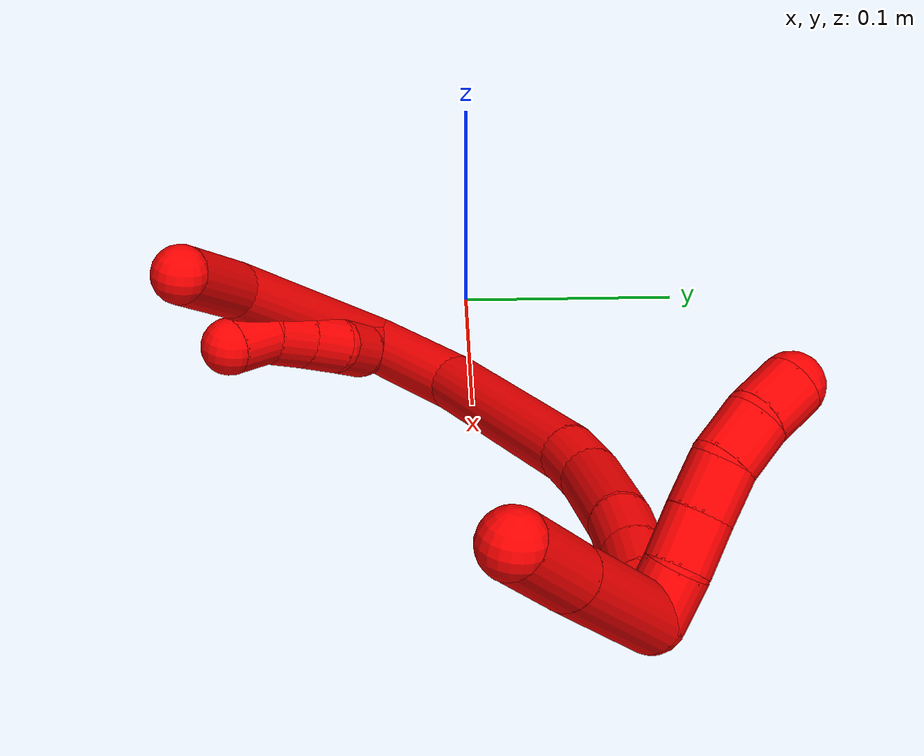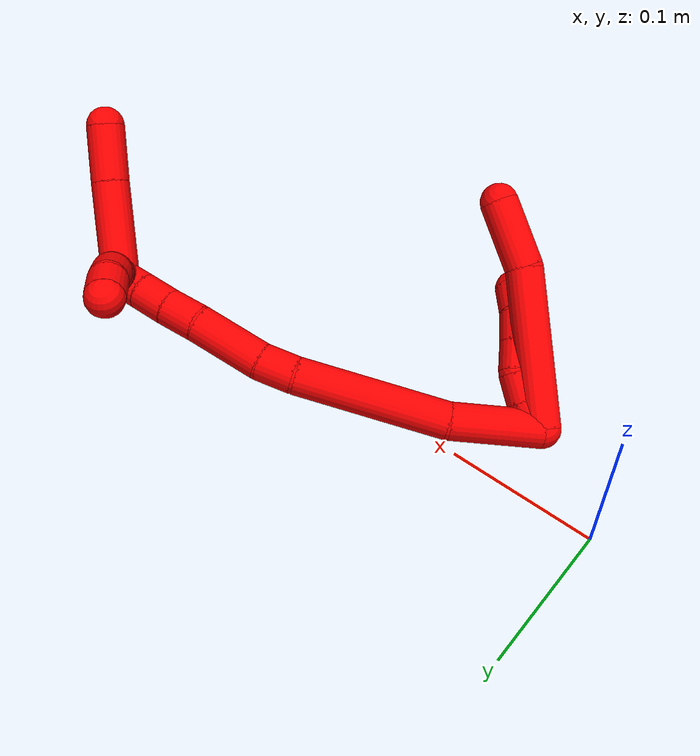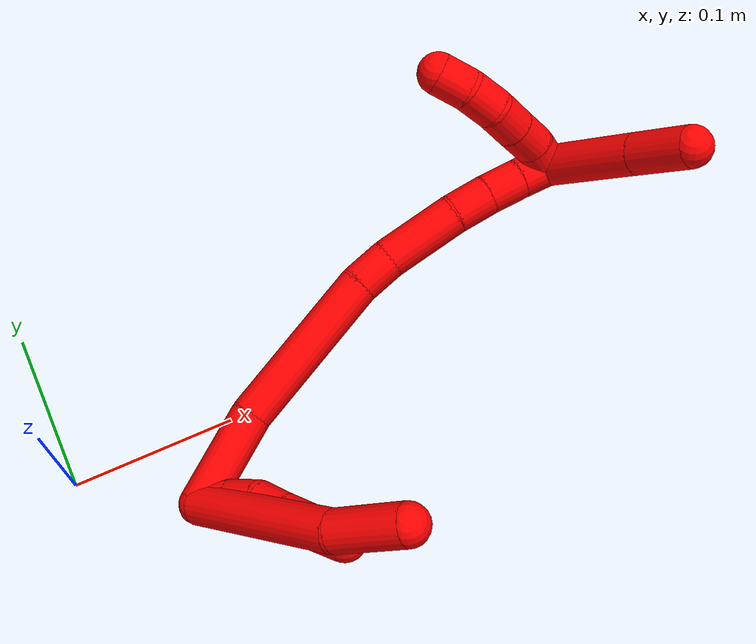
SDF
<sdf version="1.7">
 <world name="default">
  <model name="photoneo_s_sensor">
   <static>1</static>
   <pose>0 0 2 1.57079 1.57079 3.14159</pose>
   <link name="link">
    <inertial><mass>0.1</mass></inertial>
    <sensor name="sensor" type="depth">
     <update_rate>30</update_rate>
     <camera>
      <horizontal_fov>1.22</horizontal_fov>
      <image><width>1920</width><height>1200</height><format>B8G8R8</format></image>
      <clip><near>0.1</near><far>4</far></clip>
      <depth_camera><output>points</output></depth_camera>
     </camera>
     <plugin name="camera_plugin" filename="libgazebo_ros_depth_camera.so">
      <baseline>0.2</baseline>
      <alwaysOn>1</alwaysOn>
      <updateRate>0.0</updateRate>
      <cameraName>camera_ir</cameraName>
      <imageTopicName>/camera/color/image_raw</imageTopicName>
      <cameraInfoTopicName>/camera/color/camera_info</cameraInfoTopicName>
      <depthImageTopicName>/camera/depth/image_raw</depthImageTopicName>
      <depthImageCameraInfoTopicName>/camera/depth/camera_info</depthImageCameraInfoTopicName>
      <pointCloudTopicName>/camera/depth/points</pointCloudTopicName>
      <frameName>fr_optical</frameName>
      <pointCloudCutoff>0.1</pointCloudCutoff>
      <pointCloudCutoffMax>2.0</pointCloudCutoffMax>
      <distortionK1>0</distortionK1>
      <distortionK2>0</distortionK2>
      <distortionK3>0</distortionK3>
      <distortionT1>0</distortionT1>
      <distortionT2>0</distortionT2>
      <CxPrime>0</CxPrime>
      <Cx>0</Cx>
      <Cy>0</Cy>
      <focalLength>0</focalLength>
      <hackBaseline>0</hackBaseline>
     </plugin>
    </sensor>
   </link>
  </model>
  <model name="2">
   <static>0</static>
   <link name="2">
    <collision name="collision-cylinder-e_1_2_8">
     <pose>0.035819 -0.029021 0.023958 0.880672 0.760716 0.372425</pose>
     <geometry><cylinder><radius>0.0125</radius><length>0.103908</length></cylinder></geometry>
     <surface>
      <friction><ode><mu>1.16</mu><mu2>1.16</mu2><slip1>0</slip1><slip2>0</slip2></ode></friction>
      <contact><ode><kp>1e+06</kp><kd>1</kd><max_vel>0</max_vel><min_depth>0.001</min_depth></ode></contact>
     </surface>
    </collision>
    <visual name="visual-cylinder-e_1_2_8">
     <pose>0.035819 -0.029021 0.023958 0.880672 0.760716 0.372425</pose>
     <geometry><cylinder><radius>0.0125</radius><length>0.103908</length></cylinder></geometry>
     <material><ambient>1 0 0 1</ambient></material>
    </visual>
    <collision name="collision-cylinder-e_2_8_6">
     <pose>0.09078 -0.066143 0.05787 0.683137 0.980199 0.374879</pose>
     <geometry><cylinder><radius>0.0125</radius><length>0.046092</length></cylinder></geometry>
     <surface>
      <friction><ode><mu>1.16</mu><mu2>1.16</mu2><slip1>0</slip1><slip2>0</slip2></ode></friction>
      <contact><ode><kp>1e+06</kp><kd>1</kd><max_vel>0</max_vel><min_depth>0.001</min_depth></ode></contact>
     </surface>
    </collision>
    <visual name="visual-cylinder-e_2_8_6">
     <pose>0.09078 -0.066143 0.05787 0.683137 0.980199 0.374879</pose>
     <geometry><cylinder><radius>0.0125</radius><length>0.046092</length></cylinder></geometry>
     <material><ambient>1 0 0 1</ambient></material>
    </visual>
    <collision name="collision-cylinder-e_1_2_9">
     <pose>0.009327 -0.002811 0.002258 0.894058 1.20192 0.63506</pose>
     <geometry><cylinder><radius>0.0125</radius><length>0.02</length></cylinder></geometry>
     <surface>
      <friction><ode><mu>1.16</mu><mu2>1.16</mu2><slip1>0</slip1><slip2>0</slip2></ode></friction>
      <contact><ode><kp>1e+06</kp><kd>1</kd><max_vel>0</max_vel><min_depth>0.001</min_depth></ode></contact>
     </surface>
    </collision>
    <visual name="visual-cylinder-e_1_2_9">
     <pose>0.009327 -0.002811 0.002258 0.894058 1.20192 0.63506</pose>
     <geometry><cylinder><radius>0.0125</radius><length>0.02</length></cylinder></geometry>
     <material><ambient>1 0 0 1</ambient></material>
    </visual>
    <collision name="collision-cylinder-e_2_9_10">
     <pose>0.026648 -0.010162 0.008453 0.856411 0.926151 0.448144</pose>
     <geometry><cylinder><radius>0.0125</radius><length>0.02</length></cylinder></geometry>
     <surface>
      <friction><ode><mu>1.16</mu><mu2>1.16</mu2><slip1>0</slip1><slip2>0</slip2></ode></friction>
      <contact><ode><kp>1e+06</kp><kd>1</kd><max_vel>0</max_vel><min_depth>0.001</min_depth></ode></contact>
     </surface>
    </collision>
    <visual name="visual-cylinder-e_2_9_10">
     <pose>0.026648 -0.010162 0.008453 0.856411 0.926151 0.448144</pose>
     <geometry><cylinder><radius>0.0125</radius><length>0.02</length></cylinder></geometry>
     <material><ambient>1 0 0 1</ambient></material>
    </visual>
    <collision name="collision-cylinder-e_3_10_11">
     <pose>0.040832 -0.021996 0.0153 1.19114 0.6676 0.461613</pose>
     <geometry><cylinder><radius>0.0125</radius><length>0.02</length></cylinder></geometry>
     <surface>
      <friction><ode><mu>1.16</mu><mu2>1.16</mu2><slip1>0</slip1><slip2>0</slip2></ode></friction>
      <contact><ode><kp>1e+06</kp><kd>1</kd><max_vel>0</max_vel><min_depth>0.001</min_depth></ode></contact>
     </surface>
    </collision>
    <visual name="visual-cylinder-e_3_10_11">
     <pose>0.040832 -0.021996 0.0153 1.19114 0.6676 0.461613</pose>
     <geometry><cylinder><radius>0.0125</radius><length>0.02</length></cylinder></geometry>
     <material><ambient>1 0 0 1</ambient></material>
    </visual>
    <collision name="collision-cylinder-e_4_11_12">
     <pose>0.053568 -0.03633 0.020968 1.19747 0.713462 0.497986</pose>
     <geometry><cylinder><radius>0.0125</radius><length>0.02</length></cylinder></geometry>
     <surface>
      <friction><ode><mu>1.16</mu><mu2>1.16</mu2><slip1>0</slip1><slip2>0</slip2></ode></friction>
      <contact><ode><kp>1e+06</kp><kd>1</kd><max_vel>0</max_vel><min_depth>0.001</min_depth></ode></contact>
     </surface>
    </collision>
    <visual name="visual-cylinder-e_4_11_12">
     <pose>0.053568 -0.03633 0.020968 1.19747 0.713462 0.497986</pose>
     <geometry><cylinder><radius>0.0125</radius><length>0.02</length></cylinder></geometry>
     <material><ambient>1 0 0 1</ambient></material>
    </visual>
    <collision name="collision-cylinder-e_5_12_5">
     <pose>0.067651 -0.049929 0.023342 1.62932 0.853964 0.898954</pose>
     <geometry><cylinder><radius>0.0125</radius><length>0.02</length></cylinder></geometry>
     <surface>
      <friction><ode><mu>1.16</mu><mu2>1.16</mu2><slip1>0</slip1><slip2>0</slip2></ode></friction>
      <contact><ode><kp>1e+06</kp><kd>1</kd><max_vel>0</max_vel><min_depth>0.001</min_depth></ode></contact>
     </surface>
    </collision>
    <visual name="visual-cylinder-e_5_12_5">
     <pose>0.067651 -0.049929 0.023342 1.62932 0.853964 0.898954</pose>
     <geometry><cylinder><radius>0.0125</radius><length>0.02</length></cylinder></geometry>
     <material><ambient>1 0 0 1</ambient></material>
    </visual>
    <collision name="collision-cylinder-e_1_2_13">
     <pose>0.022108 0.020304 0.00365 -1.39291 0.819977 -0.697211</pose>
     <geometry><cylinder><radius>0.0125</radius><length>0.060477</length></cylinder></geometry>
     <surface>
      <friction><ode><mu>1.16</mu><mu2>1.16</mu2><slip1>0</slip1><slip2>0</slip2></ode></friction>
      <contact><ode><kp>1e+06</kp><kd>1</kd><max_vel>0</max_vel><min_depth>0.001</min_depth></ode></contact>
     </surface>
    </collision>
    <visual name="visual-cylinder-e_1_2_13">
     <pose>0.022108 0.020304 0.00365 -1.39291 0.819977 -0.697211</pose>
     <geometry><cylinder><radius>0.0125</radius><length>0.060477</length></cylinder></geometry>
     <material><ambient>1 0 0 1</ambient></material>
    </visual>
    <collision name="collision-cylinder-e_2_13_14">
     <pose>0.087084 0.066313 0.015833 -1.2503 1.00733 -0.757067</pose>
     <geometry><cylinder><radius>0.0125</radius><length>0.101413</length></cylinder></geometry>
     <surface>
      <friction><ode><mu>1.16</mu><mu2>1.16</mu2><slip1>0</slip1><slip2>0</slip2></ode></friction>
      <contact><ode><kp>1e+06</kp><kd>1</kd><max_vel>0</max_vel><min_depth>0.001</min_depth></ode></contact>
     </surface>
    </collision>
    <visual name="visual-cylinder-e_2_13_14">
     <pose>0.087084 0.066313 0.015833 -1.2503 1.00733 -0.757067</pose>
     <geometry><cylinder><radius>0.0125</radius><length>0.101413</length></cylinder></geometry>
     <material><ambient>1 0 0 1</ambient></material>
    </visual>
    <collision name="collision-cylinder-e_3_14_15">
     <pose>0.141003 0.096652 0.025519 -1.3268 1.16284 -0.949012</pose>
     <geometry><cylinder><radius>0.0125</radius><length>0.024078</length></cylinder></geometry>
     <surface>
      <friction><ode><mu>1.16</mu><mu2>1.16</mu2><slip1>0</slip1><slip2>0</slip2></ode></friction>
      <contact><ode><kp>1e+06</kp><kd>1</kd><max_vel>0</max_vel><min_depth>0.001</min_depth></ode></contact>
     </surface>
    </collision>
    <visual name="visual-cylinder-e_3_14_15">
     <pose>0.141003 0.096652 0.025519 -1.3268 1.16284 -0.949012</pose>
     <geometry><cylinder><radius>0.0125</radius><length>0.024078</length></cylinder></geometry>
     <material><ambient>1 0 0 1</ambient></material>
    </visual>
    <collision name="collision-cylinder-e_4_15_16">
     <pose>0.175048 0.106915 0.030135 -1.01938 1.29096 -0.796863</pose>
     <geometry><cylinder><radius>0.0125</radius><length>0.047849</length></cylinder></geometry>
     <surface>
      <friction><ode><mu>1.16</mu><mu2>1.16</mu2><slip1>0</slip1><slip2>0</slip2></ode></friction>
      <contact><ode><kp>1e+06</kp><kd>1</kd><max_vel>0</max_vel><min_depth>0.001</min_depth></ode></contact>
     </surface>
    </collision>
    <visual name="visual-cylinder-e_4_15_16">
     <pose>0.175048 0.106915 0.030135 -1.01938 1.29096 -0.796863</pose>
     <geometry><cylinder><radius>0.0125</radius><length>0.047849</length></cylinder></geometry>
     <material><ambient>1 0 0 1</ambient></material>
    </visual>
    <collision name="collision-cylinder-e_5_16_17">
     <pose>0.209646 0.115178 0.0337 -1.53155 1.34744 -1.30934</pose>
     <geometry><cylinder><radius>0.0125</radius><length>0.0238</length></cylinder></geometry>
     <surface>
      <friction><ode><mu>1.16</mu><mu2>1.16</mu2><slip1>0</slip1><slip2>0</slip2></ode></friction>
      <contact><ode><kp>1e+06</kp><kd>1</kd><max_vel>0</max_vel><min_depth>0.001</min_depth></ode></contact>
     </surface>
    </collision>
    <visual name="visual-cylinder-e_5_16_17">
     <pose>0.209646 0.115178 0.0337 -1.53155 1.34744 -1.30934</pose>
     <geometry><cylinder><radius>0.0125</radius><length>0.0238</length></cylinder></geometry>
     <material><ambient>1 0 0 1</ambient></material>
    </visual>
    <collision name="collision-cylinder-e_6_17_18">
     <pose>0.232222 0.119712 0.033775 -1.58565 1.39928 -1.41393</pose>
     <geometry><cylinder><radius>0.0125</radius><length>0.022269</length></cylinder></geometry>
     <surface>
      <friction><ode><mu>1.16</mu><mu2>1.16</mu2><slip1>0</slip1><slip2>0</slip2></ode></friction>
      <contact><ode><kp>1e+06</kp><kd>1</kd><max_vel>0</max_vel><min_depth>0.001</min_depth></ode></contact>
     </surface>
    </collision>
    <visual name="visual-cylinder-e_6_17_18">
     <pose>0.232222 0.119712 0.033775 -1.58565 1.39928 -1.41393</pose>
     <geometry><cylinder><radius>0.0125</radius><length>0.022269</length></cylinder></geometry>
     <material><ambient>1 0 0 1</ambient></material>
    </visual>
    <collision name="collision-cylinder-e_7_18_1">
     <pose>0.253118 0.123174 0.033299 -1.84992 1.40852 -1.69034</pose>
     <geometry><cylinder><radius>0.0125</radius><length>0.020114</length></cylinder></geometry>
     <surface>
      <friction><ode><mu>1.16</mu><mu2>1.16</mu2><slip1>0</slip1><slip2>0</slip2></ode></friction>
      <contact><ode><kp>1e+06</kp><kd>1</kd><max_vel>0</max_vel><min_depth>0.001</min_depth></ode></contact>
     </surface>
    </collision>
    <visual name="visual-cylinder-e_7_18_1">
     <pose>0.253118 0.123174 0.033299 -1.84992 1.40852 -1.69034</pose>
     <geometry><cylinder><radius>0.0125</radius><length>0.020114</length></cylinder></geometry>
     <material><ambient>1 0 0 1</ambient></material>
    </visual>
    <collision name="collision-cylinder-e_1_1_19">
     <pose>0.259628 0.127717 0.041765 -0.322826 -0.348486 0.057309</pose>
     <geometry><cylinder><radius>0.0125</radius><length>0.02</length></cylinder></geometry>
     <surface>
      <friction><ode><mu>1.16</mu><mu2>1.16</mu2><slip1>0</slip1><slip2>0</slip2></ode></friction>
      <contact><ode><kp>1e+06</kp><kd>1</kd><max_vel>0</max_vel><min_depth>0.001</min_depth></ode></contact>
     </surface>
    </collision>
    <visual name="visual-cylinder-e_1_1_19">
     <pose>0.259628 0.127717 0.041765 -0.322826 -0.348486 0.057309</pose>
     <geometry><cylinder><radius>0.0125</radius><length>0.02</length></cylinder></geometry>
     <material><ambient>1 0 0 1</ambient></material>
    </visual>
    <collision name="collision-cylinder-e_2_19_20">
     <pose>0.251121 0.133264 0.058894 -0.302551 -0.534201 0.083379</pose>
     <geometry><cylinder><radius>0.0125</radius><length>0.02</length></cylinder></geometry>
     <surface>
      <friction><ode><mu>1.16</mu><mu2>1.16</mu2><slip1>0</slip1><slip2>0</slip2></ode></friction>
      <contact><ode><kp>1e+06</kp><kd>1</kd><max_vel>0</max_vel><min_depth>0.001</min_depth></ode></contact>
     </surface>
    </collision>
    <visual name="visual-cylinder-e_2_19_20">
     <pose>0.251121 0.133264 0.058894 -0.302551 -0.534201 0.083379</pose>
     <geometry><cylinder><radius>0.0125</radius><length>0.02</length></cylinder></geometry>
     <material><ambient>1 0 0 1</ambient></material>
    </visual>
    <collision name="collision-cylinder-e_3_20_21">
     <pose>0.241023 0.138695 0.075278 -0.337595 -0.524406 0.091411</pose>
     <geometry><cylinder><radius>0.0125</radius><length>0.02</length></cylinder></geometry>
     <surface>
      <friction><ode><mu>1.16</mu><mu2>1.16</mu2><slip1>0</slip1><slip2>0</slip2></ode></friction>
      <contact><ode><kp>1e+06</kp><kd>1</kd><max_vel>0</max_vel><min_depth>0.001</min_depth></ode></contact>
     </surface>
    </collision>
    <visual name="visual-cylinder-e_3_20_21">
     <pose>0.241023 0.138695 0.075278 -0.337595 -0.524406 0.091411</pose>
     <geometry><cylinder><radius>0.0125</radius><length>0.02</length></cylinder></geometry>
     <material><ambient>1 0 0 1</ambient></material>
    </visual>
    <collision name="collision-cylinder-e_4_21_22">
     <pose>0.230018 0.146336 0.089867 -0.639212 -0.643291 0.21967</pose>
     <geometry><cylinder><radius>0.0125</radius><length>0.02</length></cylinder></geometry>
     <surface>
      <friction><ode><mu>1.16</mu><mu2>1.16</mu2><slip1>0</slip1><slip2>0</slip2></ode></friction>
      <contact><ode><kp>1e+06</kp><kd>1</kd><max_vel>0</max_vel><min_depth>0.001</min_depth></ode></contact>
     </surface>
    </collision>
    <visual name="visual-cylinder-e_4_21_22">
     <pose>0.230018 0.146336 0.089867 -0.639212 -0.643291 0.21967</pose>
     <geometry><cylinder><radius>0.0125</radius><length>0.02</length></cylinder></geometry>
     <material><ambient>1 0 0 1</ambient></material>
    </visual>
    <collision name="collision-cylinder-e_5_22_4">
     <pose>0.217008 0.156853 0.100514 -0.936551 -0.776951 0.408254</pose>
     <geometry><cylinder><radius>0.0125</radius><length>0.02</length></cylinder></geometry>
     <surface>
      <friction><ode><mu>1.16</mu><mu2>1.16</mu2><slip1>0</slip1><slip2>0</slip2></ode></friction>
      <contact><ode><kp>1e+06</kp><kd>1</kd><max_vel>0</max_vel><min_depth>0.001</min_depth></ode></contact>
     </surface>
    </collision>
    <visual name="visual-cylinder-e_5_22_4">
     <pose>0.217008 0.156853 0.100514 -0.936551 -0.776951 0.408254</pose>
     <geometry><cylinder><radius>0.0125</radius><length>0.02</length></cylinder></geometry>
     <material><ambient>1 0 0 1</ambient></material>
    </visual>
    <collision name="collision-cylinder-e_1_1_23">
     <pose>0.283437 0.108331 0.050539 0.7478 0.701819 0.285301</pose>
     <geometry><cylinder><radius>0.0125</radius><length>0.063178</length></cylinder></geometry>
     <surface>
      <friction><ode><mu>1.16</mu><mu2>1.16</mu2><slip1>0</slip1><slip2>0</slip2></ode></friction>
      <contact><ode><kp>1e+06</kp><kd>1</kd><max_vel>0</max_vel><min_depth>0.001</min_depth></ode></contact>
     </surface>
    </collision>
    <visual name="visual-cylinder-e_1_1_23">
     <pose>0.283437 0.108331 0.050539 0.7478 0.701819 0.285301</pose>
     <geometry><cylinder><radius>0.0125</radius><length>0.063178</length></cylinder></geometry>
     <material><ambient>1 0 0 1</ambient></material>
    </visual>
    <collision name="collision-cylinder-e_2_23_3">
     <pose>0.315235 0.082133 0.078856 0.744442 0.668018 0.26932</pose>
     <geometry><cylinder><radius>0.0125</radius><length>0.036822</length></cylinder></geometry>
     <surface>
      <friction><ode><mu>1.16</mu><mu2>1.16</mu2><slip1>0</slip1><slip2>0</slip2></ode></friction>
      <contact><ode><kp>1e+06</kp><kd>1</kd><max_vel>0</max_vel><min_depth>0.001</min_depth></ode></contact>
     </surface>
    </collision>
    <visual name="visual-cylinder-e_2_23_3">
     <pose>0.315235 0.082133 0.078856 0.744442 0.668018 0.26932</pose>
     <geometry><cylinder><radius>0.0125</radius><length>0.036822</length></cylinder></geometry>
     <material><ambient>1 0 0 1</ambient></material>
    </visual>
    <collision name="collision-sphere-3">
     <pose>0.326639 0.07234 0.089486 0 -0 0</pose>
     <geometry><sphere><radius>0.0125</radius></sphere></geometry>
     <surface>
      <friction><ode><mu>1.16</mu><mu2>1.16</mu2><slip1>0</slip1><slip2>0</slip2></ode></friction>
      <contact><ode><kp>1e+06</kp><kd>1</kd><max_vel>0</max_vel><min_depth>0.001</min_depth></ode></contact>
     </surface>
    </collision>
    <visual name="visual-sphere-3">
     <pose>0.326639 0.07234 0.089486 0 -0 0</pose>
     <geometry><sphere><radius>0.0125</radius></sphere></geometry>
     <material><ambient>1 0 0 1</ambient></material>
    </visual>
    <collision name="collision-sphere-23">
     <pose>0.303831 0.091926 0.068226 0 -0 0</pose>
     <geometry><sphere><radius>0.0125</radius></sphere></geometry>
     <surface>
      <friction><ode><mu>1.16</mu><mu2>1.16</mu2><slip1>0</slip1><slip2>0</slip2></ode></friction>
      <contact><ode><kp>1e+06</kp><kd>1</kd><max_vel>0</max_vel><min_depth>0.001</min_depth></ode></contact>
     </surface>
    </collision>
    <visual name="visual-sphere-23">
     <pose>0.303831 0.091926 0.068226 0 -0 0</pose>
     <geometry><sphere><radius>0.0125</radius></sphere></geometry>
     <material><ambient>1 0 0 1</ambient></material>
    </visual>
    <collision name="collision-sphere-4">
     <pose>0.209997 0.162596 0.104739 0 -0 0</pose>
     <geometry><sphere><radius>0.0125</radius></sphere></geometry>
     <surface>
      <friction><ode><mu>1.16</mu><mu2>1.16</mu2><slip1>0</slip1><slip2>0</slip2></ode></friction>
      <contact><ode><kp>1e+06</kp><kd>1</kd><max_vel>0</max_vel><min_depth>0.001</min_depth></ode></contact>
     </surface>
    </collision>
    <visual name="visual-sphere-4">
     <pose>0.209997 0.162596 0.104739 0 -0 0</pose>
     <geometry><sphere><radius>0.0125</radius></sphere></geometry>
     <material><ambient>1 0 0 1</ambient></material>
    </visual>
    <collision name="collision-sphere-22">
     <pose>0.224019 0.151109 0.096289 0 -0 0</pose>
     <geometry><sphere><radius>0.0125</radius></sphere></geometry>
     <surface>
      <friction><ode><mu>1.16</mu><mu2>1.16</mu2><slip1>0</slip1><slip2>0</slip2></ode></friction>
      <contact><ode><kp>1e+06</kp><kd>1</kd><max_vel>0</max_vel><min_depth>0.001</min_depth></ode></contact>
     </surface>
    </collision>
    <visual name="visual-sphere-22">
     <pose>0.224019 0.151109 0.096289 0 -0 0</pose>
     <geometry><sphere><radius>0.0125</radius></sphere></geometry>
     <material><ambient>1 0 0 1</ambient></material>
    </visual>
    <collision name="collision-sphere-21">
     <pose>0.236016 0.141562 0.083445 0 -0 0</pose>
     <geometry><sphere><radius>0.0125</radius></sphere></geometry>
     <surface>
      <friction><ode><mu>1.16</mu><mu2>1.16</mu2><slip1>0</slip1><slip2>0</slip2></ode></friction>
      <contact><ode><kp>1e+06</kp><kd>1</kd><max_vel>0</max_vel><min_depth>0.001</min_depth></ode></contact>
     </surface>
    </collision>
    <visual name="visual-sphere-21">
     <pose>0.236016 0.141562 0.083445 0 -0 0</pose>
     <geometry><sphere><radius>0.0125</radius></sphere></geometry>
     <material><ambient>1 0 0 1</ambient></material>
    </visual>
    <collision name="collision-sphere-20">
     <pose>0.24603 0.135828 0.06711 0 -0 0</pose>
     <geometry><sphere><radius>0.0125</radius></sphere></geometry>
     <surface>
      <friction><ode><mu>1.16</mu><mu2>1.16</mu2><slip1>0</slip1><slip2>0</slip2></ode></friction>
      <contact><ode><kp>1e+06</kp><kd>1</kd><max_vel>0</max_vel><min_depth>0.001</min_depth></ode></contact>
     </surface>
    </collision>
    <visual name="visual-sphere-20">
     <pose>0.24603 0.135828 0.06711 0 -0 0</pose>
     <geometry><sphere><radius>0.0125</radius></sphere></geometry>
     <material><ambient>1 0 0 1</ambient></material>
    </visual>
    <collision name="collision-sphere-11">
     <pose>0.047023 -0.02929 0.018211 0 -0 0</pose>
     <geometry><sphere><radius>0.0125</radius></sphere></geometry>
     <surface>
      <friction><ode><mu>1.16</mu><mu2>1.16</mu2><slip1>0</slip1><slip2>0</slip2></ode></friction>
      <contact><ode><kp>1e+06</kp><kd>1</kd><max_vel>0</max_vel><min_depth>0.001</min_depth></ode></contact>
     </surface>
    </collision>
    <visual name="visual-sphere-11">
     <pose>0.047023 -0.02929 0.018211 0 -0 0</pose>
     <geometry><sphere><radius>0.0125</radius></sphere></geometry>
     <material><ambient>1 0 0 1</ambient></material>
    </visual>
    <collision name="collision-sphere-10">
     <pose>0.034641 -0.014702 0.01239 0 -0 0</pose>
     <geometry><sphere><radius>0.0125</radius></sphere></geometry>
     <surface>
      <friction><ode><mu>1.16</mu><mu2>1.16</mu2><slip1>0</slip1><slip2>0</slip2></ode></friction>
      <contact><ode><kp>1e+06</kp><kd>1</kd><max_vel>0</max_vel><min_depth>0.001</min_depth></ode></contact>
     </surface>
    </collision>
    <visual name="visual-sphere-10">
     <pose>0.034641 -0.014702 0.01239 0 -0 0</pose>
     <geometry><sphere><radius>0.0125</radius></sphere></geometry>
     <material><ambient>1 0 0 1</ambient></material>
    </visual>
    <collision name="collision-sphere-6">
     <pose>0.109923 -0.074243 0.067823 0 -0 0</pose>
     <geometry><sphere><radius>0.0125</radius></sphere></geometry>
     <surface>
      <friction><ode><mu>1.16</mu><mu2>1.16</mu2><slip1>0</slip1><slip2>0</slip2></ode></friction>
      <contact><ode><kp>1e+06</kp><kd>1</kd><max_vel>0</max_vel><min_depth>0.001</min_depth></ode></contact>
     </surface>
    </collision>
    <visual name="visual-sphere-6">
     <pose>0.109923 -0.074243 0.067823 0 -0 0</pose>
     <geometry><sphere><radius>0.0125</radius></sphere></geometry>
     <material><ambient>1 0 0 1</ambient></material>
    </visual>
    <collision name="collision-sphere-9">
     <pose>0.018655 -0.005622 0.004516 0 -0 0</pose>
     <geometry><sphere><radius>0.0125</radius></sphere></geometry>
     <surface>
      <friction><ode><mu>1.16</mu><mu2>1.16</mu2><slip1>0</slip1><slip2>0</slip2></ode></friction>
      <contact><ode><kp>1e+06</kp><kd>1</kd><max_vel>0</max_vel><min_depth>0.001</min_depth></ode></contact>
     </surface>
    </collision>
    <visual name="visual-sphere-9">
     <pose>0.018655 -0.005622 0.004516 0 -0 0</pose>
     <geometry><sphere><radius>0.0125</radius></sphere></geometry>
     <material><ambient>1 0 0 1</ambient></material>
    </visual>
    <collision name="collision-sphere-2">
     <geometry><sphere><radius>0.0125</radius></sphere></geometry>
     <surface>
      <friction><ode><mu>1.16</mu><mu2>1.16</mu2><slip1>0</slip1><slip2>0</slip2></ode></friction>
      <contact><ode><kp>1e+06</kp><kd>1</kd><max_vel>0</max_vel><min_depth>0.001</min_depth></ode></contact>
     </surface>
    </collision>
    <visual name="visual-sphere-2">
     <geometry><sphere><radius>0.0125</radius></sphere></geometry>
     <material><ambient>1 0 0 1</ambient></material>
    </visual>
    <collision name="collision-sphere-19">
     <pose>0.256213 0.130699 0.050679 0 -0 0</pose>
     <geometry><sphere><radius>0.0125</radius></sphere></geometry>
     <surface>
      <friction><ode><mu>1.16</mu><mu2>1.16</mu2><slip1>0</slip1><slip2>0</slip2></ode></friction>
      <contact><ode><kp>1e+06</kp><kd>1</kd><max_vel>0</max_vel><min_depth>0.001</min_depth></ode></contact>
     </surface>
    </collision>
    <visual name="visual-sphere-19">
     <pose>0.256213 0.130699 0.050679 0 -0 0</pose>
     <geometry><sphere><radius>0.0125</radius></sphere></geometry>
     <material><ambient>1 0 0 1</ambient></material>
    </visual>
    <collision name="collision-sphere-8">
     <pose>0.071638 -0.058042 0.047916 0 -0 0</pose>
     <geometry><sphere><radius>0.0125</radius></sphere></geometry>
     <surface>
      <friction><ode><mu>1.16</mu><mu2>1.16</mu2><slip1>0</slip1><slip2>0</slip2></ode></friction>
      <contact><ode><kp>1e+06</kp><kd>1</kd><max_vel>0</max_vel><min_depth>0.001</min_depth></ode></contact>
     </surface>
    </collision>
    <visual name="visual-sphere-8">
     <pose>0.071638 -0.058042 0.047916 0 -0 0</pose>
     <geometry><sphere><radius>0.0125</radius></sphere></geometry>
     <material><ambient>1 0 0 1</ambient></material>
    </visual>
    <collision name="collision-sphere-12">
     <pose>0.060112 -0.04337 0.023726 0 -0 0</pose>
     <geometry><sphere><radius>0.0125</radius></sphere></geometry>
     <surface>
      <friction><ode><mu>1.16</mu><mu2>1.16</mu2><slip1>0</slip1><slip2>0</slip2></ode></friction>
      <contact><ode><kp>1e+06</kp><kd>1</kd><max_vel>0</max_vel><min_depth>0.001</min_depth></ode></contact>
     </surface>
    </collision>
    <visual name="visual-sphere-12">
     <pose>0.060112 -0.04337 0.023726 0 -0 0</pose>
     <geometry><sphere><radius>0.0125</radius></sphere></geometry>
     <material><ambient>1 0 0 1</ambient></material>
    </visual>
    <collision name="collision-sphere-5">
     <pose>0.07519 -0.056487 0.022957 0 -0 0</pose>
     <geometry><sphere><radius>0.0125</radius></sphere></geometry>
     <surface>
      <friction><ode><mu>1.16</mu><mu2>1.16</mu2><slip1>0</slip1><slip2>0</slip2></ode></friction>
      <contact><ode><kp>1e+06</kp><kd>1</kd><max_vel>0</max_vel><min_depth>0.001</min_depth></ode></contact>
     </surface>
    </collision>
    <visual name="visual-sphere-5">
     <pose>0.07519 -0.056487 0.022957 0 -0 0</pose>
     <geometry><sphere><radius>0.0125</radius></sphere></geometry>
     <material><ambient>1 0 0 1</ambient></material>
    </visual>
    <collision name="collision-sphere-13">
     <pose>0.044216 0.040608 0.007301 0 -0 0</pose>
     <geometry><sphere><radius>0.0125</radius></sphere></geometry>
     <surface>
      <friction><ode><mu>1.16</mu><mu2>1.16</mu2><slip1>0</slip1><slip2>0</slip2></ode></friction>
      <contact><ode><kp>1e+06</kp><kd>1</kd><max_vel>0</max_vel><min_depth>0.001</min_depth></ode></contact>
     </surface>
    </collision>
    <visual name="visual-sphere-13">
     <pose>0.044216 0.040608 0.007301 0 -0 0</pose>
     <geometry><sphere><radius>0.0125</radius></sphere></geometry>
     <material><ambient>1 0 0 1</ambient></material>
    </visual>
    <collision name="collision-sphere-14">
     <pose>0.129952 0.092017 0.024365 0 -0 0</pose>
     <geometry><sphere><radius>0.0125</radius></sphere></geometry>
     <surface>
      <friction><ode><mu>1.16</mu><mu2>1.16</mu2><slip1>0</slip1><slip2>0</slip2></ode></friction>
      <contact><ode><kp>1e+06</kp><kd>1</kd><max_vel>0</max_vel><min_depth>0.001</min_depth></ode></contact>
     </surface>
    </collision>
    <visual name="visual-sphere-14">
     <pose>0.129952 0.092017 0.024365 0 -0 0</pose>
     <geometry><sphere><radius>0.0125</radius></sphere></geometry>
     <material><ambient>1 0 0 1</ambient></material>
    </visual>
    <collision name="collision-sphere-15">
     <pose>0.152054 0.101287 0.026673 0 -0 0</pose>
     <geometry><sphere><radius>0.0125</radius></sphere></geometry>
     <surface>
      <friction><ode><mu>1.16</mu><mu2>1.16</mu2><slip1>0</slip1><slip2>0</slip2></ode></friction>
      <contact><ode><kp>1e+06</kp><kd>1</kd><max_vel>0</max_vel><min_depth>0.001</min_depth></ode></contact>
     </surface>
    </collision>
    <visual name="visual-sphere-15">
     <pose>0.152054 0.101287 0.026673 0 -0 0</pose>
     <geometry><sphere><radius>0.0125</radius></sphere></geometry>
     <material><ambient>1 0 0 1</ambient></material>
    </visual>
    <collision name="collision-sphere-16">
     <pose>0.198041 0.112544 0.033597 0 -0 0</pose>
     <geometry><sphere><radius>0.0125</radius></sphere></geometry>
     <surface>
      <friction><ode><mu>1.16</mu><mu2>1.16</mu2><slip1>0</slip1><slip2>0</slip2></ode></friction>
      <contact><ode><kp>1e+06</kp><kd>1</kd><max_vel>0</max_vel><min_depth>0.001</min_depth></ode></contact>
     </surface>
    </collision>
    <visual name="visual-sphere-16">
     <pose>0.198041 0.112544 0.033597 0 -0 0</pose>
     <geometry><sphere><radius>0.0125</radius></sphere></geometry>
     <material><ambient>1 0 0 1</ambient></material>
    </visual>
    <collision name="collision-sphere-17">
     <pose>0.221251 0.117811 0.033804 0 -0 0</pose>
     <geometry><sphere><radius>0.0125</radius></sphere></geometry>
     <surface>
      <friction><ode><mu>1.16</mu><mu2>1.16</mu2><slip1>0</slip1><slip2>0</slip2></ode></friction>
      <contact><ode><kp>1e+06</kp><kd>1</kd><max_vel>0</max_vel><min_depth>0.001</min_depth></ode></contact>
     </surface>
    </collision>
    <visual name="visual-sphere-17">
     <pose>0.221251 0.117811 0.033804 0 -0 0</pose>
     <geometry><sphere><radius>0.0125</radius></sphere></geometry>
     <material><ambient>1 0 0 1</ambient></material>
    </visual>
    <collision name="collision-sphere-18">
     <pose>0.243193 0.121612 0.033747 0 -0 0</pose>
     <geometry><sphere><radius>0.0125</radius></sphere></geometry>
     <surface>
      <friction><ode><mu>1.16</mu><mu2>1.16</mu2><slip1>0</slip1><slip2>0</slip2></ode></friction>
      <contact><ode><kp>1e+06</kp><kd>1</kd><max_vel>0</max_vel><min_depth>0.001</min_depth></ode></contact>
     </surface>
    </collision>
    <visual name="visual-sphere-18">
     <pose>0.243193 0.121612 0.033747 0 -0 0</pose>
     <geometry><sphere><radius>0.0125</radius></sphere></geometry>
     <material><ambient>1 0 0 1</ambient></material>
    </visual>
    <collision name="collision-sphere-1">
     <pose>0.263043 0.124736 0.032852 0 -0 0</pose>
     <geometry><sphere><radius>0.0125</radius></sphere></geometry>
     <surface>
      <friction><ode><mu>1.16</mu><mu2>1.16</mu2><slip1>0</slip1><slip2>0</slip2></ode></friction>
      <contact><ode><kp>1e+06</kp><kd>1</kd><max_vel>0</max_vel><min_depth>0.001</min_depth></ode></contact>
     </surface>
    </collision>
    <visual name="visual-sphere-1">
     <pose>0.263043 0.124736 0.032852 0 -0 0</pose>
     <geometry><sphere><radius>0.0125</radius></sphere></geometry>
     <material><ambient>1 0 0 1</ambient></material>
    </visual>
    <inertial>
     <pose>0.136732 0.051623 0.034791 0 -0 0</pose>
     <mass>0.75</mass>
     <inertia>
      <ixx>0.000178</ixx>
      <ixy>0</ixy>
      <ixz>0</ixz>
      <iyy>0.000212</iyy>
      <iyz>0</iyz>
      <izz>-0.000176</izz>
     </inertia>
    </inertial>
   </link>
   <pose>0.063663 -0.043698 0.011579 -0.122497 -0.093199 -0.107905</pose>
  </model>
 </world>
</sdf>
